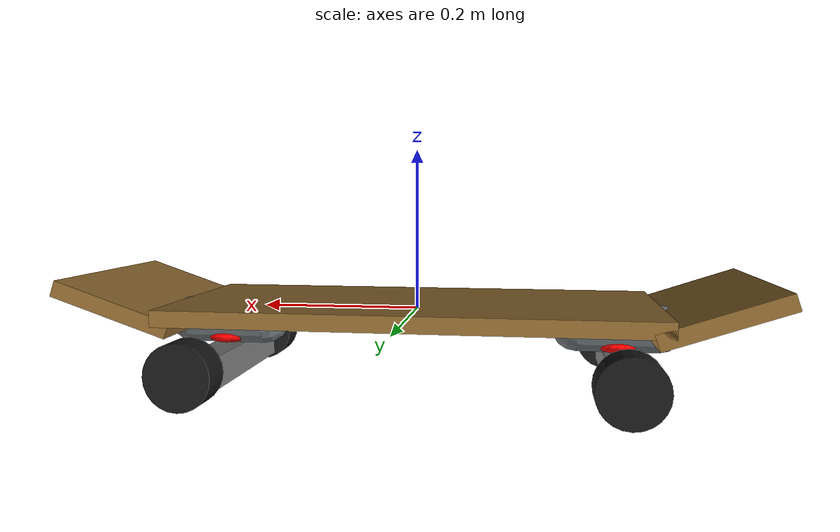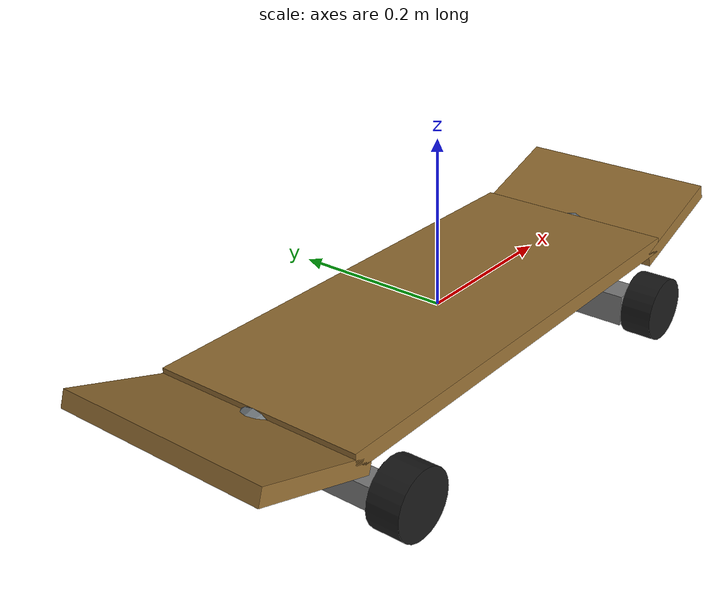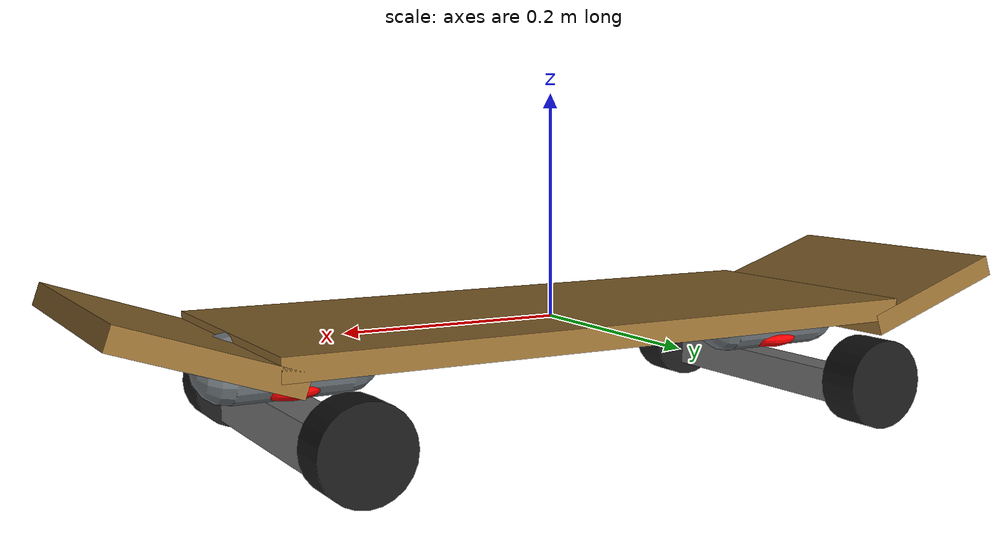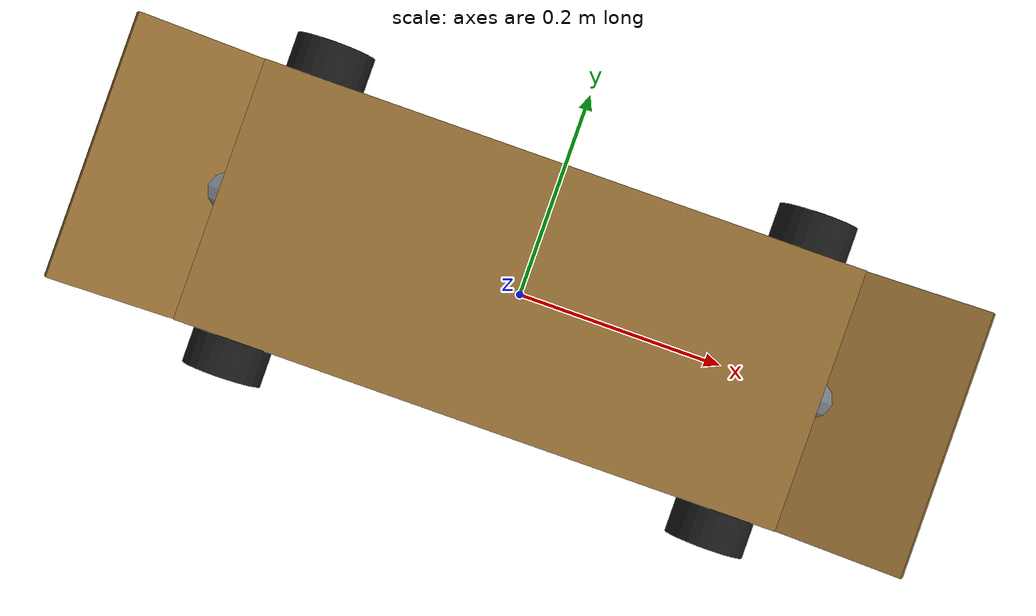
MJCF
<mujoco model="skateboard">
  <default>
    <default class="skateboard">
      <default class="truck">
        <geom type="capsule" size="0.03" rgba="0.4414 0.4727 0.4922 1"/>
      </default>
      <default class="hanger">
        <geom type="capsule" fromto="0.0 0.1 -0.05 0.0 -0.1 -0.05" size="0.015" rgba="0.4414 0.4727 0.4922 1"/>
      </default>
      <default class="wheel">
        <geom type="sphere" size="0.03" rgba="0.8867 0.2383 0.5781 1"/>
      </default>
      <default class="board-base-ball">
        <default class="board-slider">
          <joint type="slide" limited="false" stiffness="0" damping="1" frictionloss="0" armature="0"/>
          <motor ctrllimited="true" ctrlrange="-1 1" gear="50" />
        </default>
        <default class="board-ball">
          <joint type="ball" limited="false" damping="3"/>
        </default>
      </default>

      <default class="hanger-rotate">
        <joint type="hinge" axis="0 0 1" range="-1 1" limited="true" damping="2" stiffness="50"/>
      </default>
      <default class="hanger-rotate-back">
        <joint type="hinge" axis="0 0 -1" range="-1 1" limited="true" damping="2" stiffness="50"/>
      </default>
      <default class="board-tilt">
        <joint type="hinge" axis="-1 0 0" range="-10 10" limited="true" springdamper="10 10"/>
      </default>
    </default>

    <default class="tracking_site_board">
      <site type="sphere" size="0.027" rgba="1 0 0 1" group="3"/>
    </default>
  </default>

  <worldbody>
    <camera name="back-x" pos="-3 0 2" xyaxes="0 -1 0 1 0 2" mode="trackcom"/>
    <camera name="side-y" pos="0 -3 2" xyaxes="1 0 0 0 1 2" mode="trackcom"/>
    <camera name="far_chase" pos="-6.134 -6.556 5.138" xyaxes="0.746 -0.666 0.000 0.283 0.317 0.905" mode="trackcom"/>

    <body name="skateboard" pos="0 0 0">
      <freejoint/>
      <!-- board -->
      <body name="board">
        <joint name="board-tilt" class="board-tilt"/>
        <!-- joint board-tilt -->
        <body name="board_center">
          <geom name="board-base" type="box" friction="2 1 1" size="0.3 0.13 0.01" rgba="0.5859 0.4336 0.1992 1" />
        </body>
        <geom name="board-nose" type="box" friction="2 1 1" size="0.075 0.13 0.01" pos="0.35 0.0 0.01" quat="-0.9659 0 0.1588 0" rgba="0.5859 0.4336 0.1992 1"/>
        <geom name="board-tail" type="box" friction="2 1 1" size="0.075 0.13 0.01" pos="-0.35 0.0 0.01" quat="0.9659 0 0.1588 0" rgba="0.5859 0.4336 0.1992 1"/>
      </body>
      <!-- trucks -->
      <geom name="truck-nose" class="truck" fromto="0.20 0.0 -0.020 0.30 0.0 -0.020" mass="5"/>
      <geom name="truck-tail" class="truck" fromto="-0.20 0.0 -0.020 -0.30 0.0 -0.020" mass="5"/>

      <!-- Baseplate -->
      <body name="baseplate-front" pos="0.25 0.0 -0.01">
        <!-- rotate -->
        <body name="kingpin-front" pos="0 0 -0.01">
          <site name="track-front-plate" class="tracking_site_board"  pos="-0.05 0.00 0.05" />
          <geom type="capsule" fromto="0 0 0 0 0 -0.02" size="0.01" rgba="0.5 0.5 0.5 1"/>
          <joint name="hanger-rotate" class="hanger-rotate"/>
          <!-- Bushings and hanger -->
          <body name="bushings-and-hanger-front" pos="0 0 -0.02">
            <geom name="bottom-bushing-front" type="ellipsoid" size="0.03 0.03 0.01" rgba="1 0 0 1"/>
            <geom name="hanger-front" type="box" size="0.02 0.12 0.02" pos="0 0 -0.03" rgba="0.5 0.5 0.5 1"/>
            <!-- Wheels -->
            <body name="wheel-front-left" pos="0.0 0.15 -0.02" >
              <joint name="wheel-front-left" type="hinge" axis="0 1 0"/>
              <geom type="cylinder" friction="1 0.005 0.2" size="0.04 0.02" rgba="0.1 0.1 0.1 1" quat="0.707 0.707 0 0"/>

            </body>
            <body name="wheel-front-right" pos="0.0 -0.15 -0.02">
              <joint name="wheel-front-right" type="hinge" axis="0 1 0"/>
              <geom type="cylinder" friction="1 0.005 0.2" size="0.04 0.02" rgba="0.1 0.1 0.1 1" quat="0.707 0.707 0 0"/>
            </body>
          </body>
        </body>
      </body>
      <!-- identical but for back truck -->
      <body name="baseplate-back" pos="-0.25 0.0 -0.01">
        <body name="kingpin-back" pos="0 0 -0.01">
          <site name="track-back-plate" class="tracking_site_board"  pos="0.05 0.00 0.05" />
          <geom type="capsule" fromto="0 0 0 0 0 -0.02" size="0.01" rgba="0.5 0.5 0.5 1"/>
          <joint name="hanger-rotate-back" class="hanger-rotate-back"/>
          <!-- Bushings and hanger -->
          <body name="bushings-and-hanger-back" pos="0 0 -0.02">
            <geom name="bottom-bushing-back" type="ellipsoid" size="0.03 0.03 0.01" rgba="1 0 0 1"/>
            <geom name="hanger-back" type="box" size="0.015 0.12 0.015" pos="0 0 -0.03" rgba="0.5 0.5 0.5 1"/>

            <!-- Wheels -->
            <body name="wheel-back-left" pos="0.0 0.15 -0.02">
              <joint name="wheel-back-left" type="hinge" axis="0 1 0"/>
              <geom type="cylinder" friction="1 0.005 0.2" size="0.04 0.02" rgba="0.1 0.1 0.1 1" quat="0.707 0.707 0 0"/>
            </body>
            <body name="wheel-back-right" pos="0.0 -0.15 -0.02">
              <joint name="wheel-back-right" type="hinge" axis="0 1 0"/>
              <geom type="cylinder" friction="1 0.005 0.2" size="0.04 0.02" rgba="0.1 0.1 0.1 1" quat="0.707 0.707 0 0"/>
            </body>
          </body>
        </body>
      </body>
    </body>
  </worldbody>
  <!-- equality/joint between hanger-rotate and hanger-rotate-back -->
  <equality>
    <joint joint1="board-tilt" joint2="hanger-rotate-back" polycoef="0 1 0 0 0"/>
    <joint joint1="board-tilt" joint2="hanger-rotate" polycoef="0 1 0 0 0"/>
    <!-- equal the wheel joints -->
    <joint joint1="wheel-front-left" joint2="wheel-front-right"/>
    <joint joint1="wheel-front-left" joint2="wheel-back-right"/>
    <joint joint1="wheel-front-left" joint2="wheel-back-left"/>
  </equality>
  <!-- exlude contact between all board parts,   trucks and kingpins and hangars -->
  <contact>
        <exclude body1="board" body2="baseplate-front"/>
        <exclude body1="board" body2="baseplate-back"/>
        <exclude body1="board" body2="wheel-front-left"/>
        <exclude body1="board" body2="wheel-front-right"/>
        <exclude body1="board" body2="wheel-back-left"/>
        <exclude body1="board" body2="wheel-back-right"/>
        <exclude body1="board" body2="kingpin-front"/>
        <exclude body1="board" body2="kingpin-back"/>
        <exclude body1="board" body2="bushings-and-hanger-front"/>
        <exclude body1="board" body2="bushings-and-hanger-back"/>

        <exclude body1="board_center" body2="baseplate-front"/>
        <exclude body1="board_center" body2="baseplate-back"/>
        <exclude body1="board_center" body2="wheel-front-left"/>
        <exclude body1="board_center" body2="wheel-front-right"/>
        <exclude body1="board_center" body2="wheel-back-left"/>
        <exclude body1="board_center" body2="wheel-back-right"/>
        <exclude body1="board_center" body2="kingpin-front"/>
        <exclude body1="board_center" body2="kingpin-back"/>
        <exclude body1="board_center" body2="bushings-and-hanger-front"/>
        <exclude body1="board_center" body2="bushings-and-hanger-back"/>

        <exclude body1="baseplate-front" body2="wheel-front-left"/>
        <exclude body1="baseplate-front" body2="wheel-front-right"/>
        <exclude body1="baseplate-front" body2="wheel-back-left"/>
        <exclude body1="baseplate-front" body2="wheel-back-right"/>
        <exclude body1="baseplate-back" body2="wheel-front-left"/>
        <exclude body1="baseplate-back" body2="wheel-front-right"/>
        <exclude body1="baseplate-back" body2="wheel-back-left"/>
        <exclude body1="baseplate-back" body2="wheel-back-right"/>
        <exclude body1="wheel-front-left" body2="wheel-front-right"/>
        <exclude body1="wheel-front-left" body2="wheel-back-left"/>
        <exclude body1="wheel-front-left" body2="wheel-back-right"/>
        <exclude body1="wheel-front-right" body2="wheel-back-left"/>
        <exclude body1="wheel-front-right" body2="wheel-back-right"/>
        <exclude body1="wheel-back-left" body2="wheel-back-right"/>
        <exclude body1="baseplate-front" body2="baseplate-back"/>
        <exclude body1="baseplate-front" body2="kingpin-front"/>
        <exclude body1="baseplate-front" body2="kingpin-back"/>
        <exclude body1="baseplate-front" body2="bushings-and-hanger-front"/>
        <exclude body1="baseplate-front" body2="bushings-and-hanger-back"/>
        <exclude body1="baseplate-back" body2="kingpin-front"/>
        <exclude body1="baseplate-back" body2="kingpin-back"/>
        <exclude body1="baseplate-back" body2="bushings-and-hanger-front"/>
        <exclude body1="baseplate-back" body2="bushings-and-hanger-back"/>
        <exclude body1="kingpin-front" body2="kingpin-back"/>
        <exclude body1="kingpin-front" body2="bushings-and-hanger-front"/>
        <exclude body1="kingpin-front" body2="bushings-and-hanger-back"/>
        <exclude body1="kingpin-back" body2="bushings-and-hanger-front"/>
        <exclude body1="kingpin-back" body2="bushings-and-hanger-back"/>
        <exclude body1="bushings-and-hanger-front" body2="bushings-and-hanger-back"/>
      </contact>
</mujoco>
